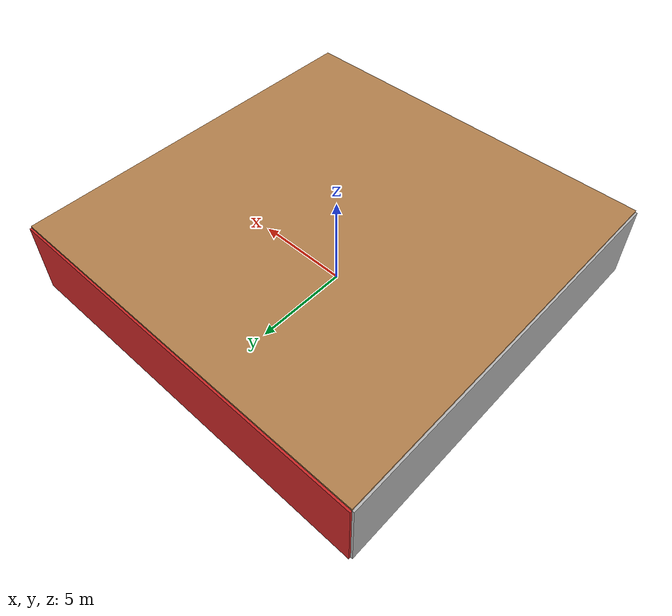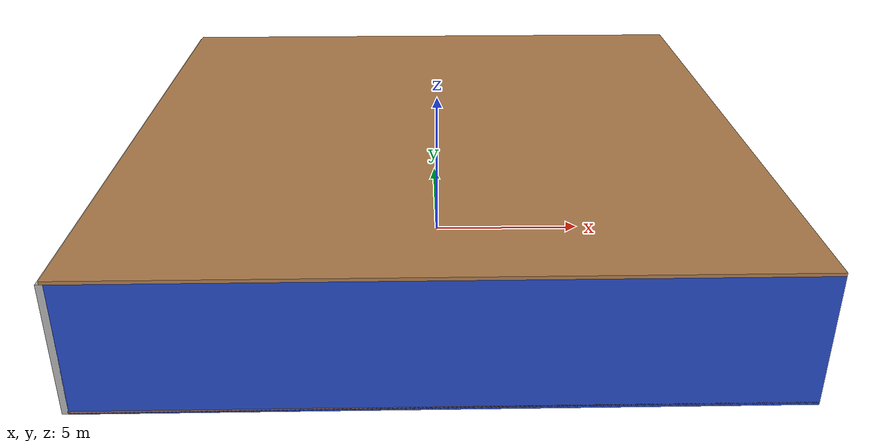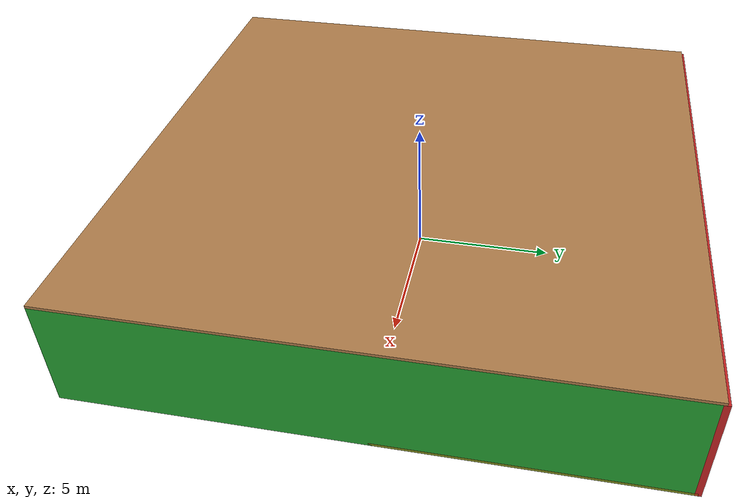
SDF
<sdf version="1.4">
 <world name="default">
  <physics type="ode">
   <max_step_size>0.001</max_step_size>
   <real_time_factor>1</real_time_factor>
   <real_time_update_rate>1000</real_time_update_rate>
   <gravity>0 0 -9.8</gravity>
  </physics>
  <scene><ambient>0.4 0.4 0.4 1</ambient><background>0.7 0.7 0.7 1</background><shadows>1</shadows></scene>
  <model name="Surrounding">
   <static>1</static>
   <link name="Ceiling">
    <collision name="Ceiling_Collision"><geometry><box><size>20 20 0.1</size></box></geometry></collision>
    <visual name="Ceiling_Visual">
     <geometry><box><size>20 20 0.1</size></box></geometry>
     <material>
      <script><uri>file://media/materials/scripts/gazebo.material</uri><name>Gazebo/WoodFloor</name></script>
     </material>
    </visual>
    <pose>0 0 4.05 0 0 0</pose>
   </link>
   <link name="Wall_South">
    <collision name="Wall_South_Collision">
     <geometry><box><size>20 0 4</size></box></geometry>
     <pose>0 0 2 0 -0 0</pose>
    </collision>
    <visual name="Wall_South_Visual">
     <pose>0 0 2 0 -0 0</pose>
     <geometry><box><size>20 0 4</size></box></geometry>
     <material>
      <script><uri>file://media/materials/scripts/gazebo.material</uri><name>Gazebo/BlueGlow</name></script>
     </material>
    </visual>
    <velocity_decay><linear>0</linear><angular>0</angular></velocity_decay>
    <pose>0 -10 0 0 -0 0</pose>
   </link>
   <link name="Wall_East">
    <collision name="Wall_21_Collision">
     <geometry><box><size>20 0 4</size></box></geometry>
     <pose>0 0 2 0 -0 0</pose>
    </collision>
    <visual name="Wall_21_Visual">
     <pose>0 0 2 0 -0 0</pose>
     <geometry><box><size>20 0 4</size></box></geometry>
     <material>
      <script><uri>file://media/materials/scripts/gazebo.material</uri><name>Gazebo/Green</name></script>
     </material>
    </visual>
    <velocity_decay><linear>0</linear><angular>0</angular></velocity_decay>
    <pose>10 0 0 0 -0 1.5708</pose>
   </link>
   <link name="Wall_North">
    <collision name="Wall_22_Collision">
     <geometry><box><size>20 0.2 4</size></box></geometry>
     <pose>0 0 2 0 -0 0</pose>
    </collision>
    <visual name="Wall_22_Visual">
     <pose>0 0 2 0 -0 0</pose>
     <geometry><box><size>20 0.2 4</size></box></geometry>
     <material>
      <script><uri>file://media/materials/scripts/gazebo.material</uri><name>Gazebo/Red</name></script>
     </material>
    </visual>
    <velocity_decay><linear>0</linear><angular>0</angular></velocity_decay>
    <pose>0 10 0 0 -0 0</pose>
   </link>
   <link name="Wall_West">
    <collision name="Wall_23_Collision">
     <geometry><box><size>20 0.2 4</size></box></geometry>
     <pose>0 0 2 0 -0 0</pose>
    </collision>
    <visual name="Wall_23_Visual">
     <pose>0 0 2 0 -0 0</pose>
     <geometry><box><size>20 0.2 4</size></box></geometry>
     <material>
      <script><uri>file://media/materials/scripts/gazebo.material</uri><name>Gazebo/LightOff</name></script>
     </material>
    </visual>
    <velocity_decay><linear>0</linear><angular>0</angular></velocity_decay>
    <pose>-10 0 0 0 0 -1.5708</pose>
   </link>
   <link name="Ground_link">
    <collision name="collision">
     <pose>0 0 .05 0 -0 0</pose>
     <geometry><box><size>20 20 0.1</size></box></geometry>
    </collision>
    <visual name="visual">
     <pose>0 0 .05 0 -0 0</pose>
     <geometry><box><size>20 20 0.1</size></box></geometry>
     <material>
      <script>
       <uri>file://media/materials/scripts/gazebo.material</uri>
       <name>Gazebo/OrangeTransparent</name>
      </script>
     </material>
    </visual>
   </link>
   <static>1</static>
  </model>
  <spherical_coordinates>
   <surface_model>EARTH_WGS84</surface_model>
   <latitude_deg>0</latitude_deg>
   <longitude_deg>0</longitude_deg>
   <elevation>0</elevation>
   <heading_deg>0</heading_deg>
  </spherical_coordinates>
  <light name="lightball_0" type="diffuse">
   <diffuse>0.8 0.8 0.8 1</diffuse>
   <specular>0.2 0.2 0.2 1</specular>
   <attenuation>
    <range>100</range>
    <constant>0.7</constant>
    <linear>0.01</linear>
    <quadratic>0.001</quadratic>
   </attenuation>
   <direction>-0.5 0.1 -0.9</direction>
   <pose>0.731836817384 -5.44726935784 0.596629275695 0 0 0</pose>
  </light>
  <light name="lightball_1" type="diffuse">
   <diffuse>0.8 0.8 0.8 1</diffuse>
   <specular>0.2 0.2 0.2 1</specular>
   <attenuation>
    <range>100</range>
    <constant>0.7</constant>
    <linear>0.01</linear>
    <quadratic>0.001</quadratic>
   </attenuation>
   <direction>-0.5 0.1 -0.9</direction>
   <pose>-0.320161861703 -2.00368209262 1.84774695636 0 0 0</pose>
  </light>
  <light name="lightball_2" type="diffuse">
   <diffuse>0.8 0.8 0.8 1</diffuse>
   <specular>0.2 0.2 0.2 1</specular>
   <attenuation>
    <range>100</range>
    <constant>0.7</constant>
    <linear>0.01</linear>
    <quadratic>0.001</quadratic>
   </attenuation>
   <direction>-0.5 0.1 -0.9</direction>
   <pose>5.34853748422 -9.24722552703 2.9305355683 0 0 0</pose>
  </light>
  <light name="lightball_3" type="diffuse">
   <diffuse>0.8 0.8 0.8 1</diffuse>
   <specular>0.2 0.2 0.2 1</specular>
   <attenuation>
    <range>100</range>
    <constant>0.7</constant>
    <linear>0.01</linear>
    <quadratic>0.001</quadratic>
   </attenuation>
   <direction>-0.5 0.1 -0.9</direction>
   <pose>6.89283811498 -6.14690269993 3.2336525563 0 0 0</pose>
  </light>
  <light name="lightball_4" type="diffuse">
   <diffuse>0.8 0.8 0.8 1</diffuse>
   <specular>0.2 0.2 0.2 1</specular>
   <attenuation>
    <range>100</range>
    <constant>0.7</constant>
    <linear>0.01</linear>
    <quadratic>0.001</quadratic>
   </attenuation>
   <direction>-0.5 0.1 -0.9</direction>
   <pose>-3.62095237109 -2.25174510571 1.5441300942 0 0 0</pose>
  </light>
  <light name="lightball_5" type="diffuse">
   <diffuse>0.8 0.8 0.8 1</diffuse>
   <specular>0.2 0.2 0.2 1</specular>
   <attenuation>
    <range>100</range>
    <constant>0.7</constant>
    <linear>0.01</linear>
    <quadratic>0.001</quadratic>
   </attenuation>
   <direction>-0.5 0.1 -0.9</direction>
   <pose>-1.79759498168 6.11355736181 3.57782674906 0 0 0</pose>
  </light>
  <light name="lightball_6" type="diffuse">
   <diffuse>0.8 0.8 0.8 1</diffuse>
   <specular>0.2 0.2 0.2 1</specular>
   <attenuation>
    <range>100</range>
    <constant>0.7</constant>
    <linear>0.01</linear>
    <quadratic>0.001</quadratic>
   </attenuation>
   <direction>-0.5 0.1 -0.9</direction>
   <pose>-3.00544631222 -1.7209922749 3.05263295131 0 0 0</pose>
  </light>
  <light name="lightball_7" type="diffuse">
   <diffuse>0.8 0.8 0.8 1</diffuse>
   <specular>0.2 0.2 0.2 1</specular>
   <attenuation>
    <range>100</range>
    <constant>0.7</constant>
    <linear>0.01</linear>
    <quadratic>0.001</quadratic>
   </attenuation>
   <direction>-0.5 0.1 -0.9</direction>
   <pose>1.43141044587 1.01496039205 0.679255082105 0 0 0</pose>
  </light>
  <light name="lightball_8" type="diffuse">
   <diffuse>0.8 0.8 0.8 1</diffuse>
   <specular>0.2 0.2 0.2 1</specular>
   <attenuation>
    <range>100</range>
    <constant>0.7</constant>
    <linear>0.01</linear>
    <quadratic>0.001</quadratic>
   </attenuation>
   <direction>-0.5 0.1 -0.9</direction>
   <pose>8.08453379886 3.73702078651 1.0307343096 0 0 0</pose>
  </light>
  <light name="lightball_9" type="diffuse">
   <diffuse>0.8 0.8 0.8 1</diffuse>
   <specular>0.2 0.2 0.2 1</specular>
   <attenuation>
    <range>100</range>
    <constant>0.7</constant>
    <linear>0.01</linear>
    <quadratic>0.001</quadratic>
   </attenuation>
   <direction>-0.5 0.1 -0.9</direction>
   <pose>1.16847937712 -1.69523445782 1.9994218157 0 0 0</pose>
  </light>
  <light name="lightball_10" type="diffuse">
   <diffuse>0.8 0.8 0.8 1</diffuse>
   <specular>0.2 0.2 0.2 1</specular>
   <attenuation>
    <range>100</range>
    <constant>0.7</constant>
    <linear>0.01</linear>
    <quadratic>0.001</quadratic>
   </attenuation>
   <direction>-0.5 0.1 -0.9</direction>
   <pose>-9.15133218987 -2.55130474341 3.09885662359 0 0 0</pose>
  </light>
  <light name="lightball_11" type="diffuse">
   <diffuse>0.8 0.8 0.8 1</diffuse>
   <specular>0.2 0.2 0.2 1</specular>
   <attenuation>
    <range>100</range>
    <constant>0.7</constant>
    <linear>0.01</linear>
    <quadratic>0.001</quadratic>
   </attenuation>
   <direction>-0.5 0.1 -0.9</direction>
   <pose>-2.09582395529 5.00250717235 0.987962906745 0 0 0</pose>
  </light>
  <light name="lightball_12" type="diffuse">
   <diffuse>0.8 0.8 0.8 1</diffuse>
   <specular>0.2 0.2 0.2 1</specular>
   <attenuation>
    <range>100</range>
    <constant>0.7</constant>
    <linear>0.01</linear>
    <quadratic>0.001</quadratic>
   </attenuation>
   <direction>-0.5 0.1 -0.9</direction>
   <pose>-5.02850619817 -3.84192368669 1.49399706201 0 0 0</pose>
  </light>
  <include>
   <uri>model://robocup_3Dsim_goal</uri>
   <pose>-6.63557829676 -2.67351788437 0 0 0 1.70771704814</pose>
  </include>
  <include><uri>model://cabinet</uri><pose>-8.46611299703 8.46708455676 0 0 0 0.543121384813</pose></include>
  <include><uri>model://cabinet</uri><pose>-4.07409524216 -7.80854285532 0 0 0 2.41716561595</pose></include>
  <include><uri>model://table</uri><pose>-0.917559482525 1.65558296449 0 0 0 2.29228556757</pose></include>
  <include><uri>model://cabinet</uri><pose>-1.95091642968 4.26641759906 0 0 0 1.26171524965</pose></include>
  <include>
   <uri>model://construction_cone</uri>
   <pose>-2.2142610223 7.29438265126 0 0 0 2.49840025275</pose>
  </include>
  <include><uri>model://cabinet</uri><pose>7.76335127548 -4.61378424673 0 0 0 2.59209784254</pose></include>
 </world>
</sdf>

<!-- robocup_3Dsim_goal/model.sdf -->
<sdf version="1.5">
  <model name="robocup_3d_goal">
    <static>true</static>
    <link name="left_post">
      <pose>0 1.05 0.45 0 0 0</pose>
      <collision name="collision">
        <geometry>
          <cylinder>
            <radius>0.05</radius>
            <length>0.9</length>
          </cylinder>
        </geometry>
      </collision>
      <visual name="visual">
        <geometry>
          <cylinder>
            <radius>0.05</radius>
            <length>0.9</length>
          </cylinder>
        </geometry>
        <material>
          <script>
            <uri>file://media/materials/scripts/gazebo.material</uri>
            <name>Gazebo/ZincYellow</name>
          </script>
        </material>
      </visual>
    </link>
    <link name="left_support_horiz_lower">
      <pose>0.30 1.05 0.01 0 0 0</pose>
      <collision name="collision">
        <geometry>
          <box>
            <size>0.50 0.02 0.02</size>
          </box>
        </geometry>
      </collision>
      <visual name="visual">
        <geometry>
          <box>
            <size>0.50 0.02 0.02</size>
          </box>
        </geometry>
        <material>
          <script>
            <uri>file://media/materials/scripts/gazebo.material</uri>
            <name>Gazebo/White</name>
          </script>
        </material>
      </visual>
    </link>
    <link name="left_support_horiz_upper">
      <pose>0.30 1.05 0.79 0 0 0</pose>
      <collision name="collision">
        <geometry>
          <box>
            <size>0.50 0.02 0.02</size>
          </box>
        </geometry>
      </collision>
      <visual name="visual">
        <geometry>
          <box>
            <size>0.50 0.02 0.02</size>
          </box>
        </geometry>
        <material>
          <script>
            <uri>file://media/materials/scripts/gazebo.material</uri>
            <name>Gazebo/White</name>
          </script>
        </material>
      </visual>
    </link>
    <link name="left_support_vertical">
      <pose>0.56 1.05 0.4 0 1.5708 0</pose>
      <collision name="collision">
        <geometry>
          <box>
            <size>0.80 0.02 0.02</size>
          </box>
        </geometry>
      </collision>
      <visual name="visual">
        <geometry>
          <box>
            <size>0.80 0.02 0.02</size>
          </box>
        </geometry>
        <material>
          <script>
            <uri>file://media/materials/scripts/gazebo.material</uri>
            <name>Gazebo/White</name>
          </script>
        </material>
      </visual>
    </link>
    <link name="right_support_horiz_lower">
      <pose>0.30 -1.05 0.01 0 0 0</pose>
      <collision name="collision">
        <geometry>
          <box>
            <size>0.50 0.02 0.02</size>
          </box>
        </geometry>
      </collision>
      <visual name="visual">
        <geometry>
          <box>
            <size>0.50 0.02 0.02</size>
          </box>
        </geometry>
        <material>
          <script>
            <uri>file://media/materials/scripts/gazebo.material</uri>
            <name>Gazebo/White</name>
          </script>
        </material>
      </visual>
    </link>
    <link name="right_support_horiz_upper">
      <pose>0.30 -1.05 0.79 0 0 0</pose>
      <collision name="collision">
        <geometry>
          <box>
            <size>0.50 0.02 0.02</size>
          </box>
        </geometry>
      </collision>
      <visual name="visual">
        <geometry>
          <box>
            <size>0.50 0.02 0.02</size>
          </box>
        </geometry>
        <material>
          <script>
            <uri>file://media/materials/scripts/gazebo.material</uri>
            <name>Gazebo/White</name>
          </script>
        </material>
      </visual>
    </link>
    <link name="right_support_vertical">
      <pose>0.56 -1.05 0.4 0 1.5708 0</pose>
      <collision name="collision">
        <geometry>
          <box>
            <size>0.80 0.02 0.02</size>
          </box>
        </geometry>
      </collision>
      <visual name="visual">
        <geometry>
          <box>
            <size>0.80 0.02 0.02</size>
          </box>
        </geometry>
        <material>
          <script>
            <uri>file://media/materials/scripts/gazebo.material</uri>
            <name>Gazebo/White</name>
          </script>
        </material>
      </visual>
    </link>
    <link name="center_support_horiz_lower">
      <pose>0.56 0 0.01 0 1.5708 0</pose>
      <collision name="collision">
        <geometry>
          <box>
            <size>0.02 2.08 0.02</size>
          </box>
        </geometry>
      </collision>
      <visual name="visual">
        <geometry>
          <box>
            <size>0.02 2.08 0.02</size>
          </box>
        </geometry>
        <material>
          <script>
            <uri>file://media/materials/scripts/gazebo.material</uri>
            <name>Gazebo/White</name>
          </script>
        </material>
      </visual>
    </link>
    <link name="center_support_horiz_upper">
      <pose>0.56 0 0.79 0 1.5708 0</pose>
      <collision name="collision">
        <geometry>
          <box>
            <size>0.02 2.08 0.02</size>
          </box>
        </geometry>
      </collision>
      <visual name="visual">
        <geometry>
          <box>
            <size>0.02 2.08 0.02</size>
          </box>
        </geometry>
        <material>
          <script>
            <uri>file://media/materials/scripts/gazebo.material</uri>
            <name>Gazebo/White</name>
          </script>
        </material>
      </visual>
    </link>
    <link name="right_post">
      <pose>0 -1.05 0.45 0 0 0</pose>
      <collision name="collision">
        <geometry>
          <cylinder>
            <radius>0.05</radius>
            <length>0.9</length>
          </cylinder>
        </geometry>
      </collision>
      <visual name="visual">
        <geometry>
          <cylinder>
            <radius>0.05</radius>
            <length>0.9</length>
          </cylinder>
        </geometry>
        <material>
          <script>
            <uri>file://media/materials/scripts/gazebo.material</uri>
            <name>Gazebo/ZincYellow</name>
          </script>
        </material>
      </visual>
    </link>
    <link name="crossbar">
      <pose>0 0 0.85 1.57 1.57 0</pose>
      <collision name="collision">
        <geometry>
          <cylinder>
            <radius>0.05</radius>
            <length>2.0</length>
          </cylinder>
        </geometry>
      </collision>
      <visual name="visual">
        <geometry>
          <cylinder>
            <radius>0.05</radius>
            <length>2.0</length>
          </cylinder>
        </geometry>
        <material>
          <script>
            <uri>file://media/materials/scripts/gazebo.material</uri>
            <name>Gazebo/ZincYellow</name>
          </script>
        </material>
      </visual>
    </link>
    <link name="center_net">
      <pose>0.56 0 0.40 0 0 0</pose>
      <collision name="collision">
        <geometry>
          <box>
            <size>0.01 2.1 0.80</size>
          </box>
        </geometry>
      </collision>
      <visual name="visual">
        <geometry>
          <box>
            <size>0.01 2.1 0.80</size>
          </box>
        </geometry>
        <material>
          <script>
            <uri>model://../model_source/models/robocup09_spl_field/materials/scripts/</uri>
            <uri>model://../model_source/models/robocup09_spl_field/materials/textures/</uri>
            <name>RoboCup/Net</name>
          </script>
        </material>
      </visual>
    </link>
    <link name="left_net">
      <pose>0.30 1.05 0.40 0 0 0</pose>
      <collision name="collision">
        <geometry>
          <box>
            <size>0.50 0.01 0.76</size>
          </box>
        </geometry>
      </collision>
      <visual name="visual">
        <geometry>
          <box>
            <size>0.50 0.01 0.76</size>
          </box>
        </geometry>
        <material>
          <script>
            <uri>model://../model_source/models/robocup09_spl_field/materials/scripts/</uri>
            <uri>model://../model_source/models/robocup09_spl_field/materials/textures/</uri>
            <name>RoboCup/Net</name>
          </script>
        </material>
      </visual>
    </link>
    <link name="right_net">
      <pose>0.30 -1.05 0.40 0 0 0</pose>
      <collision name="collision">
        <geometry>
          <box>
            <size>0.50 0.01 0.76</size>
          </box>
        </geometry>
      </collision>
      <visual name="visual">
        <geometry>
          <box>
            <size>0.50 0.01 0.76</size>
          </box>
        </geometry>
        <material>
          <script>
            <uri>model://../model_source/models/robocup09_spl_field/materials/scripts/</uri>
            <uri>model://../model_source/models/robocup09_spl_field/materials/textures/</uri>
            <name>RoboCup/Net</name>
          </script>
        </material>
      </visual>
    </link>
  </model>
</sdf>

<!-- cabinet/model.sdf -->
<sdf version="1.5">
  <model name="cabinet">
    <static>true</static>
    <link name="cabinet_bottom_plate">
      <inertial>
        <pose>0 0 -1 0 0 0</pose>
        <inertia>
          <ixx>2.050000</ixx>
          <ixy>0</ixy>
          <ixz>0</ixz>
          <iyy>2.050000</iyy>
          <iyz>0</iyz>
          <izz>2.050000</izz>
        </inertia>
        <mass>25.000000</mass>
      </inertial>
      <collision name="cabinet_bottom_plate_geom">
        <pose>0 0 0.010000 0 0 0</pose>
        <geometry>
          <box>
            <size>0.450000 0.450000 0.020000</size>
          </box>
        </geometry>
      </collision>
      <visual name="cabinet_bottom_plate_geom_visual">
        <pose>0 0 0.010000 0 0 0</pose>
        <geometry>
          <box>
            <size>0.450000 0.450000 0.020000</size>
          </box>
        </geometry>
        <material>
          <script>
            <uri>model://media/materials/scripts/gazebo.material</uri>
            <name>Gazebo/Wood</name>
          </script>
        </material>
      </visual>
      <collision name="cabinet_bottom_plate_geom_cabinet_back_plate">
        <pose>0.235000 0 0.510000 0 0 0</pose>
        <geometry>
          <box>
            <size>0.020000 0.450000 1.020000</size>
          </box>
        </geometry>
      </collision>
      <visual name="cabinet_bottom_plate_geom_cabinet_back_plate_visual">
        <pose>0.235000 0 0.510000 0 0 0</pose>
        <geometry>
          <box>
            <size>0.020000 0.450000 1.020000</size>
          </box>
        </geometry>
        <material>
          <script>
            <uri>model://media/materials/scripts/gazebo.material</uri>
            <name>Gazebo/Wood</name>
          </script>
        </material>
      </visual>
      <collision name="cabinet_bottom_plate_geom_cabinet_left_plate">
        <pose>0 0.235000 0.510000 0 0 0</pose>
        <geometry>
          <box>
            <size>0.450000 0.020000 1.020000</size>
          </box>
        </geometry>
      </collision>
      <visual name="cabinet_bottom_plate_geom_cabinet_left_plate_visual">
        <pose>0 0.235000 0.510000 0 0 0</pose>
        <geometry>
          <box>
            <size>0.450000 0.020000 1.020000</size>
          </box>
        </geometry>
        <material>
          <script>
            <uri>model://media/materials/scripts/gazebo.material</uri>
            <name>Gazebo/Wood</name>
          </script>
        </material>
      </visual>
      <collision name="cabinet_bottom_plate_geom_cabinet_middle_plate">
        <pose>0 0 0.510000 0 0 0</pose>
        <geometry>
          <box>
            <size>0.450000 0.450000 0.020000</size>
          </box>
        </geometry>
      </collision>
      <visual name="cabinet_bottom_plate_geom_cabinet_middle_plate_visual">
        <pose>0 0 0.510000 0 0 0</pose>
        <geometry>
          <box>
            <size>0.450000 0.450000 0.020000</size>
          </box>
        </geometry>
        <material>
          <script>
            <uri>model://media/materials/scripts/gazebo.material</uri>
            <name>Gazebo/Wood</name>
          </script>
        </material>
      </visual>
      <collision name="cabinet_bottom_plate_geom_cabinet_right_plate">
        <pose>0 -0.235000 0.510000 0 0 0</pose>
        <geometry>
          <box>
            <size>0.450000 0.020000 1.020000</size>
          </box>
        </geometry>
      </collision>
      <visual name="cabinet_bottom_plate_geom_cabinet_right_plate_visual">
        <pose>0 -0.235000 0.510000 0 0 0</pose>
        <geometry>
          <box>
            <size>0.450000 0.020000 1.020000</size>
          </box>
        </geometry>
        <material>
          <script>
            <uri>model://media/materials/scripts/gazebo.material</uri>
            <name>Gazebo/Wood</name>
          </script>
        </material>
      </visual>
      <collision name="cabinet_bottom_plate_geom_cabinet_top_plate">
        <pose>0 0 1.010000 0 0 0</pose>
        <geometry>
          <box>
            <size>0.450000 0.450000 0.020000</size>
          </box>
        </geometry>
      </collision>
      <visual name="cabinet_bottom_plate_geom_cabinet_top_plate_visual">
        <pose>0 0 1.010000 0 0 0</pose>
        <geometry>
          <box>
            <size>0.450000 0.450000 0.020000</size>
          </box>
        </geometry>
        <material>
          <script>
            <uri>model://media/materials/scripts/gazebo.material</uri>
            <name>Gazebo/Wood</name>
          </script>
        </material>
      </visual>
    </link>
  </model>
</sdf>

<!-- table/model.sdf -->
<sdf version="1.5">
  <model name="table">
    <static>true</static>
    <link name="link">
      <collision name="surface">
        <pose>0 0 1.0 0 0 0</pose>
        <geometry>
          <box>
            <size>1.5 0.8 0.03</size>
          </box>
        </geometry>
        <surface>
          <friction>
            <ode>
              <mu>0.6</mu>
              <mu2>0.6</mu2>
            </ode>
          </friction>
        </surface>
      </collision>
      <visual name="visual1">
        <pose>0 0 1.0 0 0 0</pose>
        <geometry>
          <box>
            <size>1.5 0.8 0.03</size>
          </box>
        </geometry>
        <material>
          <script>
            <uri>model://media/materials/scripts/gazebo.material</uri>
            <name>Gazebo/Wood</name>
          </script>
        </material>
      </visual>
      <collision name="front_left_leg">
        <pose>0.68 0.38 0.5 0 0 0</pose>
        <geometry>
          <cylinder>
            <radius>0.02</radius>
            <length>1.0</length>
          </cylinder>
        </geometry>
      </collision>
      <visual name="front_left_leg">
        <pose>0.68 0.38 0.5 0 0 0</pose>
        <geometry>
          <cylinder>
            <radius>0.02</radius>
            <length>1.0</length>
          </cylinder>
        </geometry>
        <material>
          <script>
            <uri>model://media/materials/scripts/gazebo.material</uri>
            <name>Gazebo/Grey</name>
          </script>
        </material>
      </visual>
      <collision name="front_right_leg">
        <pose>0.68 -0.38 0.5 0 0 0</pose>
        <geometry>
          <cylinder>
            <radius>0.02</radius>
            <length>1.0</length>
          </cylinder>
        </geometry>
      </collision>
      <visual name="front_right_leg">
        <pose>0.68 -0.38 0.5 0 0 0</pose>
        <geometry>
          <cylinder>
            <radius>0.02</radius>
            <length>1.0</length>
          </cylinder>
        </geometry>
        <material>
          <script>
            <uri>model://media/materials/scripts/gazebo.material</uri>
            <name>Gazebo/Grey</name>
          </script>
        </material>
      </visual>
      <collision name="back_right_leg">
        <pose>-0.68 -0.38 0.5 0 0 0</pose>
        <geometry>
          <cylinder>
            <radius>0.02</radius>
            <length>1.0</length>
          </cylinder>
        </geometry>
      </collision>
      <visual name="back_right_leg">
        <pose>-0.68 -0.38 0.5 0 0 0</pose>
        <geometry>
          <cylinder>
            <radius>0.02</radius>
            <length>1.0</length>
          </cylinder>
        </geometry>
        <material>
          <script>
            <uri>model://media/materials/scripts/gazebo.material</uri>
            <name>Gazebo/Grey</name>
          </script>
        </material>
      </visual>
      <collision name="back_left_leg">
        <pose>-0.68 0.38 0.5 0 0 0</pose>
        <geometry>
          <cylinder>
            <radius>0.02</radius>
            <length>1.0</length>
          </cylinder>
        </geometry>
      </collision>
      <visual name="back_left_leg">
        <pose>-0.68 0.38 0.5 0 0 0</pose>
        <geometry>
          <cylinder>
            <radius>0.02</radius>
            <length>1.0</length>
          </cylinder>
        </geometry>
        <material>
          <script>
            <uri>model://media/materials/scripts/gazebo.material</uri>
            <name>Gazebo/Grey</name>
          </script>
        </material>
      </visual>
    </link>
  </model>
</sdf>

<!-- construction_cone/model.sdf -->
<sdf version="1.5">
  <model name="Construction Cone">
    <link name="link">
      <collision name="collision">
        <geometry>
          <mesh>
            <scale>10 10 10</scale>
            <uri>file://isr-testbed/construction_cone/meshes/construction_cone.dae</uri>
          </mesh>
        </geometry>
      </collision>
      <visual name="visual">
        <geometry>
          <mesh>
            <scale>10 10 10</scale>
            <uri>file://isr-testbed/construction_cone/meshes/construction_cone.dae</uri>
          </mesh>
        </geometry>
      </visual>
    </link>
  </model>
</sdf>
